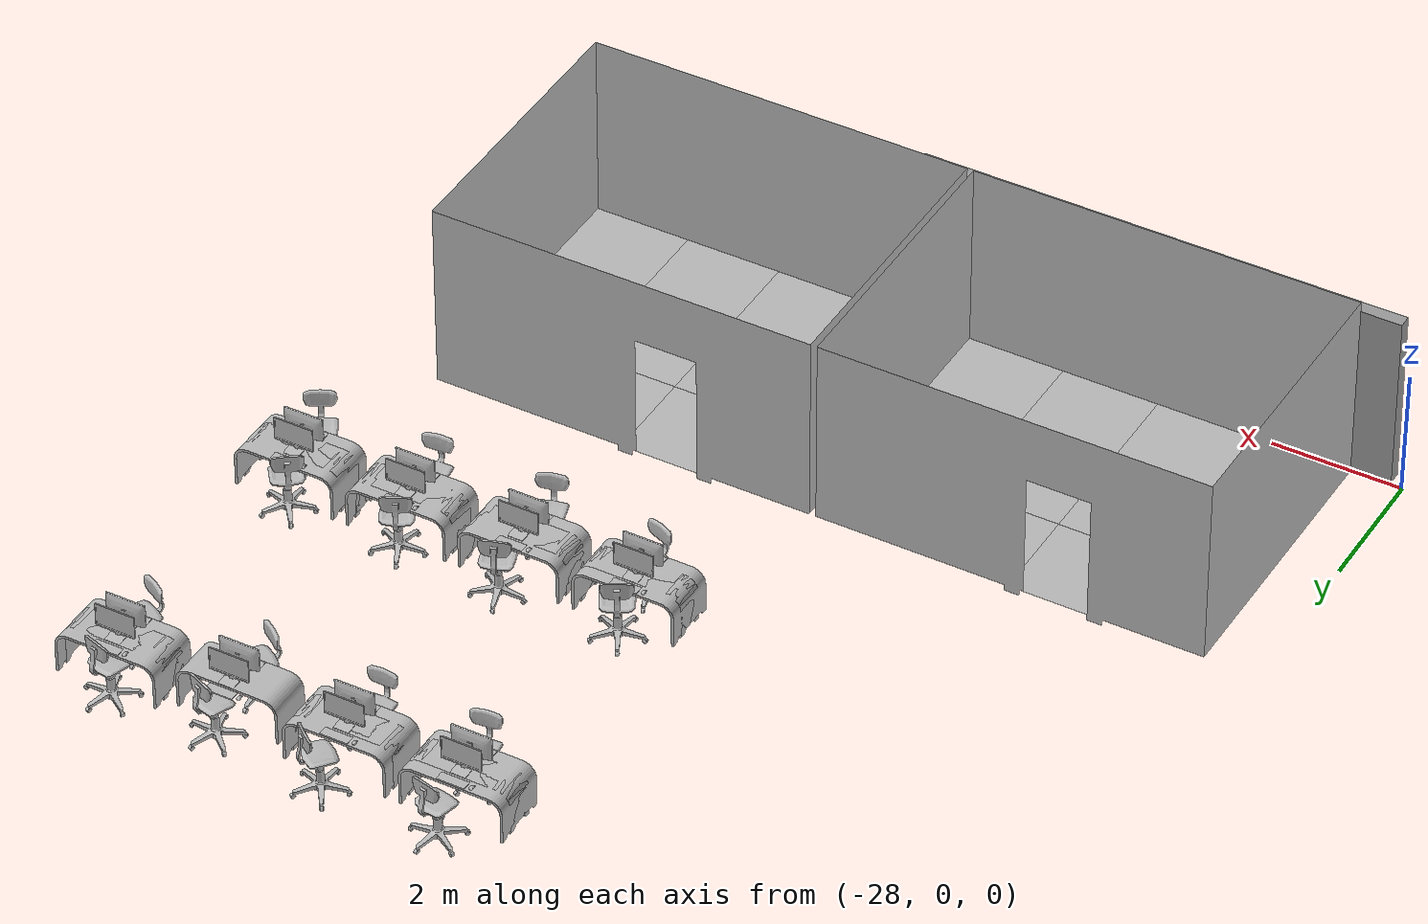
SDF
<sdf version="1.7">
 <world name="default">
  <model name="PrivateMeetingRoomD">
   <static>1</static>
   <pose>-18.1 4.5 0 0 -0 0</pose>
   <link name="link">
    <collision name="box_collision">
     <pose>0 -2.25 1.5 0 -0 0</pose>
     <geometry><box><size>6 4.5 3</size></box></geometry>
    </collision>
    <visual name="visual">
     <geometry>
      <mesh><uri>model://media/meshes/meeting_room_small.obj</uri><scale>0.01 0.01 0.01</scale></mesh>
     </geometry>
    </visual>
    <visual name="floor_-1_-2">
     <pose>-1.5 -3 0 0 -0 0</pose>
     <geometry><mesh><uri>model://media/meshes/carpet.obj</uri><scale>0.01 0.01 0.01</scale></mesh></geometry>
    </visual>
    <visual name="floor_-1_-1">
     <pose>-1.5 -1.5 0 0 -0 0</pose>
     <geometry><mesh><uri>model://media/meshes/carpet.obj</uri><scale>0.01 0.01 0.01</scale></mesh></geometry>
    </visual>
    <visual name="floor_-1_0">
     <pose>-1.5 0 0 0 -0 0</pose>
     <geometry><mesh><uri>model://media/meshes/carpet.obj</uri><scale>0.01 0.01 0.01</scale></mesh></geometry>
    </visual>
    <visual name="floor_0_-2">
     <pose>0 -3 0 0 -0 0</pose>
     <geometry><mesh><uri>model://media/meshes/carpet.obj</uri><scale>0.01 0.01 0.01</scale></mesh></geometry>
    </visual>
    <visual name="floor_0_-1">
     <pose>0 -1.5 0 0 -0 0</pose>
     <geometry><mesh><uri>model://media/meshes/carpet.obj</uri><scale>0.01 0.01 0.01</scale></mesh></geometry>
    </visual>
    <visual name="floor_0_0">
     <geometry><mesh><uri>model://media/meshes/carpet.obj</uri><scale>0.01 0.01 0.01</scale></mesh></geometry>
    </visual>
    <visual name="floor_1_-2">
     <pose>1.5 -3 0 0 -0 0</pose>
     <geometry><mesh><uri>model://media/meshes/carpet.obj</uri><scale>0.01 0.01 0.01</scale></mesh></geometry>
    </visual>
    <visual name="floor_1_-1">
     <pose>1.5 -1.5 0 0 -0 0</pose>
     <geometry><mesh><uri>model://media/meshes/carpet.obj</uri><scale>0.01 0.01 0.01</scale></mesh></geometry>
    </visual>
    <visual name="floor_1_0">
     <pose>1.5 0 0 0 -0 0</pose>
     <geometry><mesh><uri>model://media/meshes/carpet.obj</uri><scale>0.01 0.01 0.01</scale></mesh></geometry>
    </visual>
    <visual name="floor_2_-2">
     <pose>3 -3 0 0 -0 0</pose>
     <geometry><mesh><uri>model://media/meshes/carpet.obj</uri><scale>0.01 0.01 0.01</scale></mesh></geometry>
    </visual>
    <visual name="floor_2_-1">
     <pose>3 -1.5 0 0 -0 0</pose>
     <geometry><mesh><uri>model://media/meshes/carpet.obj</uri><scale>0.01 0.01 0.01</scale></mesh></geometry>
    </visual>
    <visual name="floor_2_0">
     <pose>3 0 0 0 -0 0</pose>
     <geometry><mesh><uri>model://media/meshes/carpet.obj</uri><scale>0.01 0.01 0.01</scale></mesh></geometry>
    </visual>
   </link>
  </model>
  <model name="PrivateMeetingRoomE">
   <static>1</static>
   <pose>-24.2 4.5 0 0 -0 0</pose>
   <link name="link">
    <collision name="box_collision">
     <pose>0 -2.25 1.5 0 -0 0</pose>
     <geometry><box><size>6 4.5 3</size></box></geometry>
    </collision>
    <visual name="visual">
     <geometry>
      <mesh><uri>model://media/meshes/meeting_room_small.obj</uri><scale>0.01 0.01 0.01</scale></mesh>
     </geometry>
    </visual>
    <visual name="floor_-1_-2">
     <pose>-1.5 -3 0 0 -0 0</pose>
     <geometry><mesh><uri>model://media/meshes/carpet.obj</uri><scale>0.01 0.01 0.01</scale></mesh></geometry>
    </visual>
    <visual name="floor_-1_-1">
     <pose>-1.5 -1.5 0 0 -0 0</pose>
     <geometry><mesh><uri>model://media/meshes/carpet.obj</uri><scale>0.01 0.01 0.01</scale></mesh></geometry>
    </visual>
    <visual name="floor_-1_0">
     <pose>-1.5 0 0 0 -0 0</pose>
     <geometry><mesh><uri>model://media/meshes/carpet.obj</uri><scale>0.01 0.01 0.01</scale></mesh></geometry>
    </visual>
    <visual name="floor_0_-2">
     <pose>0 -3 0 0 -0 0</pose>
     <geometry><mesh><uri>model://media/meshes/carpet.obj</uri><scale>0.01 0.01 0.01</scale></mesh></geometry>
    </visual>
    <visual name="floor_0_-1">
     <pose>0 -1.5 0 0 -0 0</pose>
     <geometry><mesh><uri>model://media/meshes/carpet.obj</uri><scale>0.01 0.01 0.01</scale></mesh></geometry>
    </visual>
    <visual name="floor_0_0">
     <geometry><mesh><uri>model://media/meshes/carpet.obj</uri><scale>0.01 0.01 0.01</scale></mesh></geometry>
    </visual>
    <visual name="floor_1_-2">
     <pose>1.5 -3 0 0 -0 0</pose>
     <geometry><mesh><uri>model://media/meshes/carpet.obj</uri><scale>0.01 0.01 0.01</scale></mesh></geometry>
    </visual>
    <visual name="floor_1_-1">
     <pose>1.5 -1.5 0 0 -0 0</pose>
     <geometry><mesh><uri>model://media/meshes/carpet.obj</uri><scale>0.01 0.01 0.01</scale></mesh></geometry>
    </visual>
    <visual name="floor_1_0">
     <pose>1.5 0 0 0 -0 0</pose>
     <geometry><mesh><uri>model://media/meshes/carpet.obj</uri><scale>0.01 0.01 0.01</scale></mesh></geometry>
    </visual>
    <visual name="floor_2_-2">
     <pose>3 -3 0 0 -0 0</pose>
     <geometry><mesh><uri>model://media/meshes/carpet.obj</uri><scale>0.01 0.01 0.01</scale></mesh></geometry>
    </visual>
    <visual name="floor_2_-1">
     <pose>3 -1.5 0 0 -0 0</pose>
     <geometry><mesh><uri>model://media/meshes/carpet.obj</uri><scale>0.01 0.01 0.01</scale></mesh></geometry>
    </visual>
    <visual name="floor_2_0">
     <pose>3 0 0 0 -0 0</pose>
     <geometry><mesh><uri>model://media/meshes/carpet.obj</uri><scale>0.01 0.01 0.01</scale></mesh></geometry>
    </visual>
   </link>
  </model>
  <model name="PrivateCubicle_31">
   <static>1</static>
   <pose>-21 7.5 0 0 -0 0</pose>
   <frame name="desk_31::__model__" attached_to="desk_31::link">
    <pose relative_to="__model__">0.884 0.1 0.1 0 -0 0</pose>
   </frame>
   <static>1</static>
   <link name="desk_31::link">
    <visual name="visual">
     <geometry><mesh><uri>model://desk/meshes/desk.obj</uri><scale>0.001 0.001 0.001</scale></mesh></geometry>
    </visual>
    <pose relative_to="desk_31::__model__">0 0 0 0 -0 0</pose>
   </link>
   <link name="computer_31">
    <pose>0.884 0.15 0.78 0 -0 3.14159</pose>
    <visual name="monitor">
     <geometry>
      <mesh><uri>model://computer/meshes/computer_monitor.obj</uri><scale>0.01 0.01 0.01</scale></mesh>
     </geometry>
    </visual>
   </link>
   <link name="chair_31">
    <pose>0.905022 0.532235 0 0 -0 0.504552</pose>
    <visual name="visual">
     <geometry>
      <mesh><uri>model://office_chair/meshes/office_chair.dae</uri><scale>1.4 1.4 1.4</scale></mesh>
     </geometry>
    </visual>
   </link>
   <frame name="desk_32::__model__" attached_to="desk_32::link">
    <pose relative_to="__model__">0.884 -0.1 0.1 0 -0 3.14159</pose>
   </frame>
   <static>1</static>
   <link name="desk_32::link">
    <visual name="visual">
     <geometry><mesh><uri>model://desk/meshes/desk.obj</uri><scale>0.001 0.001 0.001</scale></mesh></geometry>
    </visual>
    <pose relative_to="desk_32::__model__">0 0 0 0 -0 0</pose>
   </link>
   <link name="computer_32">
    <pose>0.884 -0.15 0.78 0 -0 0</pose>
    <visual name="monitor">
     <geometry>
      <mesh><uri>model://computer/meshes/computer_monitor.obj</uri><scale>0.01 0.01 0.01</scale></mesh>
     </geometry>
    </visual>
   </link>
   <link name="chair_32">
    <pose>0.967951 -0.445118 0 0 -0 2.79785</pose>
    <visual name="visual">
     <geometry>
      <mesh><uri>model://office_chair/meshes/office_chair.dae</uri><scale>1.4 1.4 1.4</scale></mesh>
     </geometry>
    </visual>
   </link>
   <frame name="desk_33::__model__" attached_to="desk_33::link">
    <pose relative_to="__model__">2.684 0.1 0.1 0 -0 0</pose>
   </frame>
   <static>1</static>
   <link name="desk_33::link">
    <visual name="visual">
     <geometry><mesh><uri>model://desk/meshes/desk.obj</uri><scale>0.001 0.001 0.001</scale></mesh></geometry>
    </visual>
    <pose relative_to="desk_33::__model__">0 0 0 0 -0 0</pose>
   </link>
   <link name="computer_33">
    <pose>2.684 0.15 0.78 0 -0 3.14159</pose>
    <visual name="monitor">
     <geometry>
      <mesh><uri>model://computer/meshes/computer_monitor.obj</uri><scale>0.01 0.01 0.01</scale></mesh>
     </geometry>
    </visual>
   </link>
   <link name="chair_33">
    <pose>2.75951 0.569461 0 0 -0 0.321292</pose>
    <visual name="visual">
     <geometry>
      <mesh><uri>model://office_chair/meshes/office_chair.dae</uri><scale>1.4 1.4 1.4</scale></mesh>
     </geometry>
    </visual>
   </link>
   <frame name="desk_34::__model__" attached_to="desk_34::link">
    <pose relative_to="__model__">2.684 -0.1 0.1 0 -0 3.14159</pose>
   </frame>
   <static>1</static>
   <link name="desk_34::link">
    <visual name="visual">
     <geometry><mesh><uri>model://desk/meshes/desk.obj</uri><scale>0.001 0.001 0.001</scale></mesh></geometry>
    </visual>
    <pose relative_to="desk_34::__model__">0 0 0 0 -0 0</pose>
   </link>
   <link name="computer_34">
    <pose>2.684 -0.15 0.78 0 -0 0</pose>
    <visual name="monitor">
     <geometry>
      <mesh><uri>model://computer/meshes/computer_monitor.obj</uri><scale>0.01 0.01 0.01</scale></mesh>
     </geometry>
    </visual>
   </link>
   <link name="chair_34">
    <pose>2.66653 -0.642749 0 0 -0 -2.85317</pose>
    <visual name="visual">
     <geometry>
      <mesh><uri>model://office_chair/meshes/office_chair.dae</uri><scale>1.4 1.4 1.4</scale></mesh>
     </geometry>
    </visual>
   </link>
   <frame name="desk_35::__model__" attached_to="desk_35::link">
    <pose relative_to="__model__">4.484 0.1 0.1 0 -0 0</pose>
   </frame>
   <static>1</static>
   <link name="desk_35::link">
    <visual name="visual">
     <geometry><mesh><uri>model://desk/meshes/desk.obj</uri><scale>0.001 0.001 0.001</scale></mesh></geometry>
    </visual>
    <pose relative_to="desk_35::__model__">0 0 0 0 -0 0</pose>
   </link>
   <link name="computer_35">
    <pose>4.484 0.15 0.78 0 -0 3.14159</pose>
    <visual name="monitor">
     <geometry>
      <mesh><uri>model://computer/meshes/computer_monitor.obj</uri><scale>0.01 0.01 0.01</scale></mesh>
     </geometry>
    </visual>
   </link>
   <link name="chair_35">
    <pose>4.43213 0.444603 0 0 -0 0.453743</pose>
    <visual name="visual">
     <geometry>
      <mesh><uri>model://office_chair/meshes/office_chair.dae</uri><scale>1.4 1.4 1.4</scale></mesh>
     </geometry>
    </visual>
   </link>
   <frame name="desk_36::__model__" attached_to="desk_36::link">
    <pose relative_to="__model__">4.484 -0.1 0.1 0 -0 3.14159</pose>
   </frame>
   <static>1</static>
   <link name="desk_36::link">
    <visual name="visual">
     <geometry><mesh><uri>model://desk/meshes/desk.obj</uri><scale>0.001 0.001 0.001</scale></mesh></geometry>
    </visual>
    <pose relative_to="desk_36::__model__">0 0 0 0 -0 0</pose>
   </link>
   <link name="computer_36">
    <pose>4.484 -0.15 0.78 0 -0 0</pose>
    <visual name="monitor">
     <geometry>
      <mesh><uri>model://computer/meshes/computer_monitor.obj</uri><scale>0.01 0.01 0.01</scale></mesh>
     </geometry>
    </visual>
   </link>
   <link name="chair_36">
    <pose>4.48904 -0.584098 0 0 -0 -3.01436</pose>
    <visual name="visual">
     <geometry>
      <mesh><uri>model://office_chair/meshes/office_chair.dae</uri><scale>1.4 1.4 1.4</scale></mesh>
     </geometry>
    </visual>
   </link>
   <frame name="desk_37::__model__" attached_to="desk_37::link">
    <pose relative_to="__model__">6.284 0.1 0.1 0 -0 0</pose>
   </frame>
   <static>1</static>
   <link name="desk_37::link">
    <visual name="visual">
     <geometry><mesh><uri>model://desk/meshes/desk.obj</uri><scale>0.001 0.001 0.001</scale></mesh></geometry>
    </visual>
    <pose relative_to="desk_37::__model__">0 0 0 0 -0 0</pose>
   </link>
   <link name="computer_37">
    <pose>6.284 0.15 0.78 0 -0 3.14159</pose>
    <visual name="monitor">
     <geometry>
      <mesh><uri>model://computer/meshes/computer_monitor.obj</uri><scale>0.01 0.01 0.01</scale></mesh>
     </geometry>
    </visual>
   </link>
   <link name="chair_37">
    <pose>6.2115 0.457519 0 0 -0 0.652156</pose>
    <visual name="visual">
     <geometry>
      <mesh><uri>model://office_chair/meshes/office_chair.dae</uri><scale>1.4 1.4 1.4</scale></mesh>
     </geometry>
    </visual>
   </link>
   <frame name="desk_38::__model__" attached_to="desk_38::link">
    <pose relative_to="__model__">6.284 -0.1 0.1 0 -0 3.14159</pose>
   </frame>
   <static>1</static>
   <link name="desk_38::link">
    <visual name="visual">
     <geometry><mesh><uri>model://desk/meshes/desk.obj</uri><scale>0.001 0.001 0.001</scale></mesh></geometry>
    </visual>
    <pose relative_to="desk_38::__model__">0 0 0 0 -0 0</pose>
   </link>
   <link name="computer_38">
    <pose>6.284 -0.15 0.78 0 -0 0</pose>
    <visual name="monitor">
     <geometry>
      <mesh><uri>model://computer/meshes/computer_monitor.obj</uri><scale>0.01 0.01 0.01</scale></mesh>
     </geometry>
    </visual>
   </link>
   <link name="chair_38">
    <pose>6.33996 -0.628199 0 0 -0 -2.62743</pose>
    <visual name="visual">
     <geometry>
      <mesh><uri>model://office_chair/meshes/office_chair.dae</uri><scale>1.4 1.4 1.4</scale></mesh>
     </geometry>
    </visual>
   </link>
  </model>
  <model name="PrivateCubicle_32">
   <static>1</static>
   <pose>-21 12 0 0 -0 0</pose>
   <frame name="desk_31::__model__" attached_to="desk_31::link">
    <pose relative_to="__model__">0.884 0.1 0.1 0 -0 0</pose>
   </frame>
   <static>1</static>
   <link name="desk_31::link">
    <visual name="visual">
     <geometry><mesh><uri>model://desk/meshes/desk.obj</uri><scale>0.001 0.001 0.001</scale></mesh></geometry>
    </visual>
    <pose relative_to="desk_31::__model__">0 0 0 0 -0 0</pose>
   </link>
   <link name="computer_31">
    <pose>0.884 0.15 0.78 0 -0 3.14159</pose>
    <visual name="monitor">
     <geometry>
      <mesh><uri>model://computer/meshes/computer_monitor.obj</uri><scale>0.01 0.01 0.01</scale></mesh>
     </geometry>
    </visual>
   </link>
   <link name="chair_31">
    <pose>0.936183 0.686042 0 0 0 -0.23445</pose>
    <visual name="visual">
     <geometry>
      <mesh><uri>model://office_chair/meshes/office_chair.dae</uri><scale>1.4 1.4 1.4</scale></mesh>
     </geometry>
    </visual>
   </link>
   <frame name="desk_32::__model__" attached_to="desk_32::link">
    <pose relative_to="__model__">0.884 -0.1 0.1 0 -0 3.14159</pose>
   </frame>
   <static>1</static>
   <link name="desk_32::link">
    <visual name="visual">
     <geometry><mesh><uri>model://desk/meshes/desk.obj</uri><scale>0.001 0.001 0.001</scale></mesh></geometry>
    </visual>
    <pose relative_to="desk_32::__model__">0 0 0 0 -0 0</pose>
   </link>
   <link name="computer_32">
    <pose>0.884 -0.15 0.78 0 -0 0</pose>
    <visual name="monitor">
     <geometry>
      <mesh><uri>model://computer/meshes/computer_monitor.obj</uri><scale>0.01 0.01 0.01</scale></mesh>
     </geometry>
    </visual>
   </link>
   <link name="chair_32">
    <pose>0.972911 -0.509045 0 0 -0 -2.999</pose>
    <visual name="visual">
     <geometry>
      <mesh><uri>model://office_chair/meshes/office_chair.dae</uri><scale>1.4 1.4 1.4</scale></mesh>
     </geometry>
    </visual>
   </link>
   <frame name="desk_33::__model__" attached_to="desk_33::link">
    <pose relative_to="__model__">2.684 0.1 0.1 0 -0 0</pose>
   </frame>
   <static>1</static>
   <link name="desk_33::link">
    <visual name="visual">
     <geometry><mesh><uri>model://desk/meshes/desk.obj</uri><scale>0.001 0.001 0.001</scale></mesh></geometry>
    </visual>
    <pose relative_to="desk_33::__model__">0 0 0 0 -0 0</pose>
   </link>
   <link name="computer_33">
    <pose>2.684 0.15 0.78 0 -0 3.14159</pose>
    <visual name="monitor">
     <geometry>
      <mesh><uri>model://computer/meshes/computer_monitor.obj</uri><scale>0.01 0.01 0.01</scale></mesh>
     </geometry>
    </visual>
   </link>
   <link name="chair_33">
    <pose>2.76964 0.645496 0 0 0 -0.675048</pose>
    <visual name="visual">
     <geometry>
      <mesh><uri>model://office_chair/meshes/office_chair.dae</uri><scale>1.4 1.4 1.4</scale></mesh>
     </geometry>
    </visual>
   </link>
   <frame name="desk_34::__model__" attached_to="desk_34::link">
    <pose relative_to="__model__">2.684 -0.1 0.1 0 -0 3.14159</pose>
   </frame>
   <static>1</static>
   <link name="desk_34::link">
    <visual name="visual">
     <geometry><mesh><uri>model://desk/meshes/desk.obj</uri><scale>0.001 0.001 0.001</scale></mesh></geometry>
    </visual>
    <pose relative_to="desk_34::__model__">0 0 0 0 -0 0</pose>
   </link>
   <link name="computer_34">
    <pose>2.684 -0.15 0.78 0 -0 0</pose>
    <visual name="monitor">
     <geometry>
      <mesh><uri>model://computer/meshes/computer_monitor.obj</uri><scale>0.01 0.01 0.01</scale></mesh>
     </geometry>
    </visual>
   </link>
   <link name="chair_34">
    <pose>2.62201 -0.543438 0 0 -0 3.13574</pose>
    <visual name="visual">
     <geometry>
      <mesh><uri>model://office_chair/meshes/office_chair.dae</uri><scale>1.4 1.4 1.4</scale></mesh>
     </geometry>
    </visual>
   </link>
   <link name="computer_35">
    <pose>4.484 0.15 0.78 0 -0 3.14159</pose>
    <visual name="monitor">
     <geometry>
      <mesh><uri>model://computer/meshes/computer_monitor.obj</uri><scale>0.01 0.01 0.01</scale></mesh>
     </geometry>
    </visual>
   </link>
   <link name="chair_35">
    <pose>4.5441 0.442169 0 0 0 -0.401862</pose>
    <visual name="visual">
     <geometry>
      <mesh><uri>model://office_chair/meshes/office_chair.dae</uri><scale>1.4 1.4 1.4</scale></mesh>
     </geometry>
    </visual>
   </link>
   <frame name="desk_36::__model__" attached_to="desk_36::link">
    <pose relative_to="__model__">4.484 -0.1 0.1 0 -0 3.14159</pose>
   </frame>
   <static>1</static>
   <link name="desk_36::link">
    <visual name="visual">
     <geometry><mesh><uri>model://desk/meshes/desk.obj</uri><scale>0.001 0.001 0.001</scale></mesh></geometry>
    </visual>
    <pose relative_to="desk_36::__model__">0 0 0 0 -0 0</pose>
   </link>
   <link name="computer_36">
    <pose>4.484 -0.15 0.78 0 -0 0</pose>
    <visual name="monitor">
     <geometry>
      <mesh><uri>model://computer/meshes/computer_monitor.obj</uri><scale>0.01 0.01 0.01</scale></mesh>
     </geometry>
    </visual>
   </link>
   <link name="chair_36">
    <pose>4.47145 -0.573515 0 0 -0 2.5182</pose>
    <visual name="visual">
     <geometry>
      <mesh><uri>model://office_chair/meshes/office_chair.dae</uri><scale>1.4 1.4 1.4</scale></mesh>
     </geometry>
    </visual>
   </link>
   <frame name="desk_37::__model__" attached_to="desk_37::link">
    <pose relative_to="__model__">6.284 0.1 0.1 0 -0 0</pose>
   </frame>
   <static>1</static>
   <link name="desk_37::link">
    <visual name="visual">
     <geometry><mesh><uri>model://desk/meshes/desk.obj</uri><scale>0.001 0.001 0.001</scale></mesh></geometry>
    </visual>
    <pose relative_to="desk_37::__model__">0 0 0 0 -0 0</pose>
   </link>
   <link name="computer_37">
    <pose>6.284 0.15 0.78 0 -0 3.14159</pose>
    <visual name="monitor">
     <geometry>
      <mesh><uri>model://computer/meshes/computer_monitor.obj</uri><scale>0.01 0.01 0.01</scale></mesh>
     </geometry>
    </visual>
   </link>
   <link name="chair_37">
    <pose>6.18599 0.46307 0 0 0 -0.314561</pose>
    <visual name="visual">
     <geometry>
      <mesh><uri>model://office_chair/meshes/office_chair.dae</uri><scale>1.4 1.4 1.4</scale></mesh>
     </geometry>
    </visual>
   </link>
   <frame name="desk_38::__model__" attached_to="desk_38::link">
    <pose relative_to="__model__">6.284 -0.1 0.1 0 -0 3.14159</pose>
   </frame>
   <static>1</static>
   <link name="desk_38::link">
    <visual name="visual">
     <geometry><mesh><uri>model://desk/meshes/desk.obj</uri><scale>0.001 0.001 0.001</scale></mesh></geometry>
    </visual>
    <pose relative_to="desk_38::__model__">0 0 0 0 -0 0</pose>
   </link>
   <link name="computer_38">
    <pose>6.284 -0.15 0.78 0 -0 0</pose>
    <visual name="monitor">
     <geometry>
      <mesh><uri>model://computer/meshes/computer_monitor.obj</uri><scale>0.01 0.01 0.01</scale></mesh>
     </geometry>
    </visual>
   </link>
   <link name="chair_38">
    <pose>6.32755 -0.573593 0 0 -0 2.64226</pose>
    <visual name="visual">
     <geometry>
      <mesh><uri>model://office_chair/meshes/office_chair.dae</uri><scale>1.4 1.4 1.4</scale></mesh>
     </geometry>
    </visual>
   </link>
  </model>
  <model name="grey_wall">
   <static>1</static>
   <link name="link">
    <pose>0 0 1.4 0 -0 0</pose>
    <collision name="collision"><geometry><box><size>7.5 0.2 2.8</size></box></geometry></collision>
    <visual name="visual">
     <cast_shadows>0</cast_shadows>
     <geometry><box><size>7.5 0.2 2.8</size></box></geometry>
     <material>
      <script>
       <uri>model://grey_wall/materials/scripts</uri>
       <uri>model://grey_wall/materials/textures</uri>
       <name>vrc/grey_wall</name>
      </script>
     </material>
    </visual>
   </link>
   <pose>-24.0525 -0.150006 0 0 -0 0</pose>
  </model>
 </world>
</sdf>
